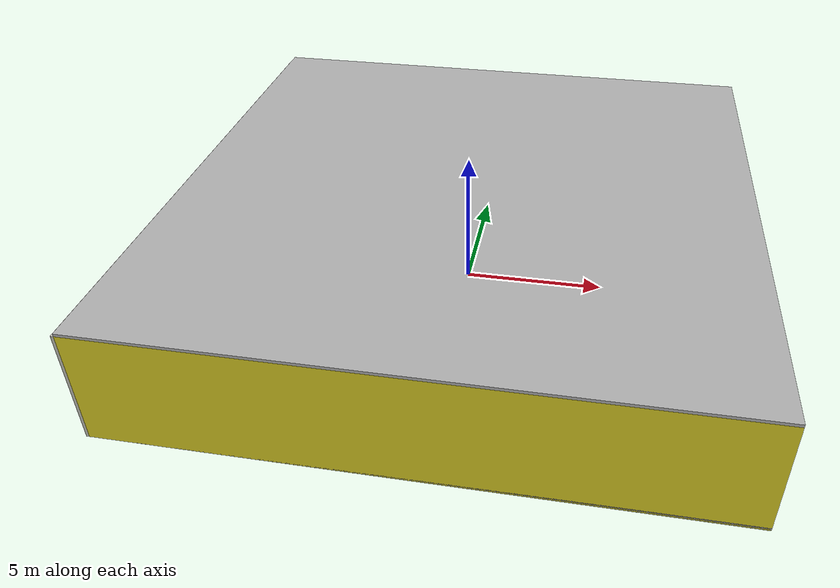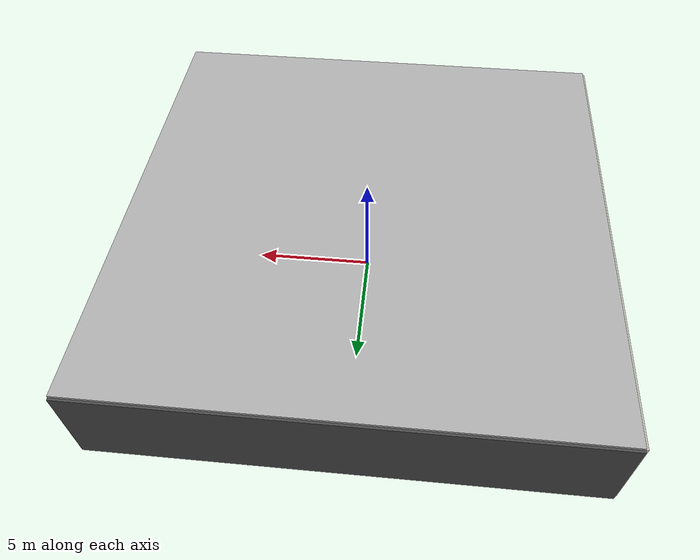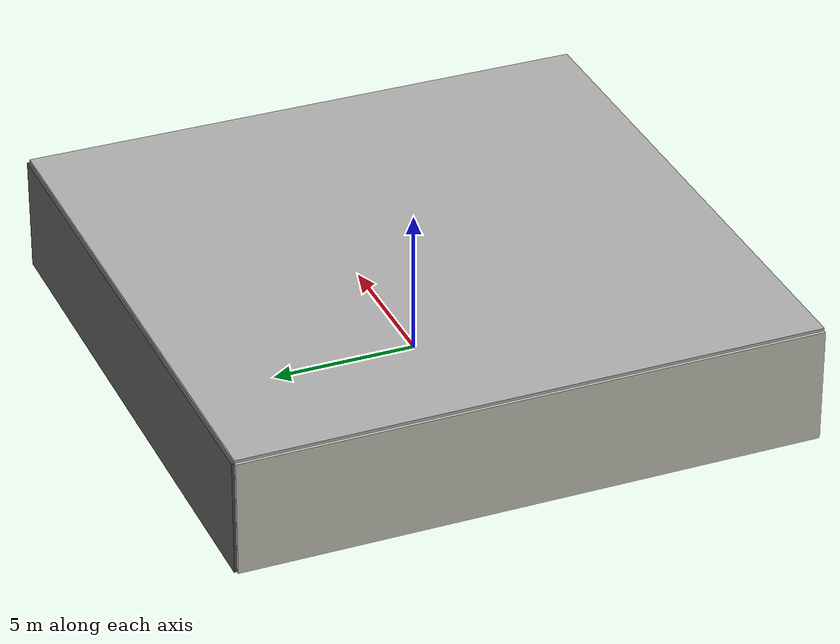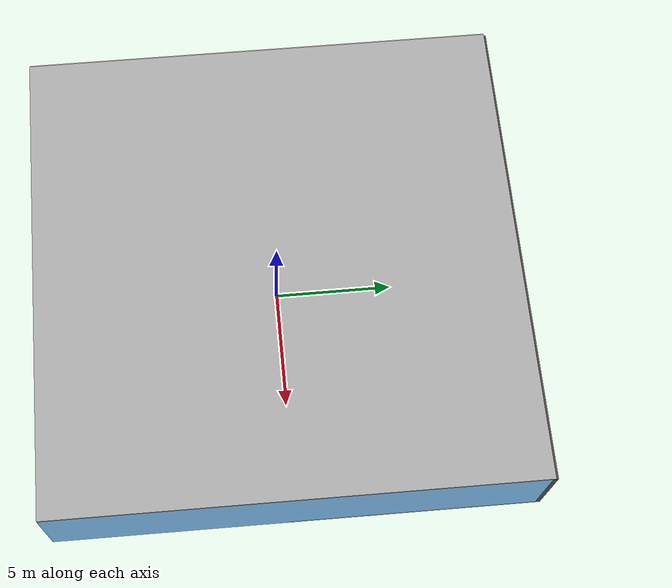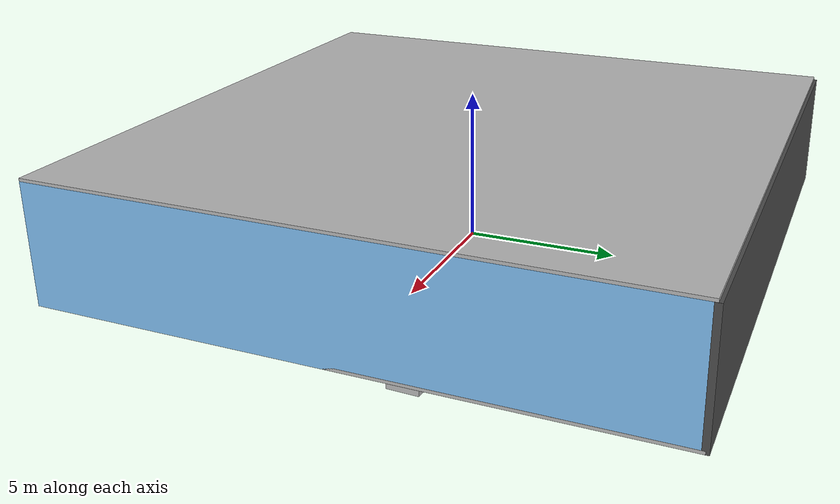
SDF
<sdf version="1.4">
 <world name="default">
  <physics type="ode">
   <max_step_size>0.001</max_step_size>
   <real_time_factor>1</real_time_factor>
   <real_time_update_rate>1000</real_time_update_rate>
   <gravity>0 0 -9.8</gravity>
  </physics>
  <scene><ambient>0.4 0.4 0.4 1</ambient><background>0.7 0.7 0.7 1</background><shadows>1</shadows></scene>
  <model name="Surrounding">
   <static>1</static>
   <link name="Ceiling">
    <collision name="Ceiling_Collision"><geometry><box><size>20 20 0.1</size></box></geometry></collision>
    <visual name="Ceiling_Visual">
     <geometry><box><size>20 20 0.1</size></box></geometry>
     <material>
      <script><uri>file://media/materials/scripts/gazebo.material</uri><name>Gazebo/Pioneer2Body</name></script>
     </material>
    </visual>
    <pose>0 0 4.05 0 0 0</pose>
   </link>
   <link name="Wall_South">
    <collision name="Wall_South_Collision">
     <geometry><box><size>20 0 4</size></box></geometry>
     <pose>0 0 2 0 -0 0</pose>
    </collision>
    <visual name="Wall_South_Visual">
     <pose>0 0 2 0 -0 0</pose>
     <geometry><box><size>20 0 4</size></box></geometry>
     <material>
      <script><uri>file://media/materials/scripts/gazebo.material</uri><name>Gazebo/YellowGlow</name></script>
     </material>
    </visual>
    <velocity_decay><linear>0</linear><angular>0</angular></velocity_decay>
    <pose>0 -10 0 0 -0 0</pose>
   </link>
   <link name="Wall_East">
    <collision name="Wall_21_Collision">
     <geometry><box><size>20 0 4</size></box></geometry>
     <pose>0 0 2 0 -0 0</pose>
    </collision>
    <visual name="Wall_21_Visual">
     <pose>0 0 2 0 -0 0</pose>
     <geometry><box><size>20 0 4</size></box></geometry>
     <material>
      <script><uri>file://media/materials/scripts/gazebo.material</uri><name>Gazebo/SkyBlue</name></script>
     </material>
    </visual>
    <velocity_decay><linear>0</linear><angular>0</angular></velocity_decay>
    <pose>10 0 0 0 -0 1.5708</pose>
   </link>
   <link name="Wall_North">
    <collision name="Wall_22_Collision">
     <geometry><box><size>20 0.2 4</size></box></geometry>
     <pose>0 0 2 0 -0 0</pose>
    </collision>
    <visual name="Wall_22_Visual">
     <pose>0 0 2 0 -0 0</pose>
     <geometry><box><size>20 0.2 4</size></box></geometry>
     <material>
      <script><uri>file://media/materials/scripts/gazebo.material</uri><name>Gazebo/DarkGrey</name></script>
     </material>
    </visual>
    <velocity_decay><linear>0</linear><angular>0</angular></velocity_decay>
    <pose>0 10 0 0 -0 0</pose>
   </link>
   <link name="Wall_West">
    <collision name="Wall_23_Collision">
     <geometry><box><size>20 0.2 4</size></box></geometry>
     <pose>0 0 2 0 -0 0</pose>
    </collision>
    <visual name="Wall_23_Visual">
     <pose>0 0 2 0 -0 0</pose>
     <geometry><box><size>20 0.2 4</size></box></geometry>
     <material>
      <script><uri>file://media/materials/scripts/gazebo.material</uri><name>Gazebo/PaintedWall</name></script>
     </material>
    </visual>
    <velocity_decay><linear>0</linear><angular>0</angular></velocity_decay>
    <pose>-10 0 0 0 0 -1.5708</pose>
   </link>
   <link name="Ground_link">
    <collision name="collision">
     <pose>0 0 .05 0 -0 0</pose>
     <geometry><box><size>20 20 0.1</size></box></geometry>
    </collision>
    <visual name="visual">
     <pose>0 0 .05 0 -0 0</pose>
     <geometry><box><size>20 20 0.1</size></box></geometry>
     <material>
      <script><uri>file://media/materials/scripts/gazebo.material</uri><name>Gazebo/JointAnchor</name></script>
     </material>
    </visual>
   </link>
   <static>1</static>
  </model>
  <spherical_coordinates>
   <surface_model>EARTH_WGS84</surface_model>
   <latitude_deg>0</latitude_deg>
   <longitude_deg>0</longitude_deg>
   <elevation>0</elevation>
   <heading_deg>0</heading_deg>
  </spherical_coordinates>
  <light name="lightball_0" type="diffuse">
   <diffuse>0.8 0.8 0.8 1</diffuse>
   <specular>0.2 0.2 0.2 1</specular>
   <attenuation>
    <range>100</range>
    <constant>0.7</constant>
    <linear>0.01</linear>
    <quadratic>0.001</quadratic>
   </attenuation>
   <direction>-0.5 0.1 -0.9</direction>
   <pose>-9.27996236369 8.98440845065 0.958283920018 0 0 0</pose>
  </light>
  <light name="lightball_1" type="diffuse">
   <diffuse>0.8 0.8 0.8 1</diffuse>
   <specular>0.2 0.2 0.2 1</specular>
   <attenuation>
    <range>100</range>
    <constant>0.7</constant>
    <linear>0.01</linear>
    <quadratic>0.001</quadratic>
   </attenuation>
   <direction>-0.5 0.1 -0.9</direction>
   <pose>-1.98472821358 6.70084306956 3.13054649911 0 0 0</pose>
  </light>
  <light name="lightball_2" type="diffuse">
   <diffuse>0.8 0.8 0.8 1</diffuse>
   <specular>0.2 0.2 0.2 1</specular>
   <attenuation>
    <range>100</range>
    <constant>0.7</constant>
    <linear>0.01</linear>
    <quadratic>0.001</quadratic>
   </attenuation>
   <direction>-0.5 0.1 -0.9</direction>
   <pose>-7.63768513947 -6.60048543363 3.18477352104 0 0 0</pose>
  </light>
  <light name="lightball_3" type="diffuse">
   <diffuse>0.8 0.8 0.8 1</diffuse>
   <specular>0.2 0.2 0.2 1</specular>
   <attenuation>
    <range>100</range>
    <constant>0.7</constant>
    <linear>0.01</linear>
    <quadratic>0.001</quadratic>
   </attenuation>
   <direction>-0.5 0.1 -0.9</direction>
   <pose>-8.47169962365 4.89795921211 1.90370890063 0 0 0</pose>
  </light>
  <light name="lightball_4" type="diffuse">
   <diffuse>0.8 0.8 0.8 1</diffuse>
   <specular>0.2 0.2 0.2 1</specular>
   <attenuation>
    <range>100</range>
    <constant>0.7</constant>
    <linear>0.01</linear>
    <quadratic>0.001</quadratic>
   </attenuation>
   <direction>-0.5 0.1 -0.9</direction>
   <pose>-1.4322400338 9.05599527339 2.52218229794 0 0 0</pose>
  </light>
  <light name="lightball_5" type="diffuse">
   <diffuse>0.8 0.8 0.8 1</diffuse>
   <specular>0.2 0.2 0.2 1</specular>
   <attenuation>
    <range>100</range>
    <constant>0.7</constant>
    <linear>0.01</linear>
    <quadratic>0.001</quadratic>
   </attenuation>
   <direction>-0.5 0.1 -0.9</direction>
   <pose>-8.54054334256 -5.64443583484 2.18927664427 0 0 0</pose>
  </light>
  <light name="lightball_6" type="diffuse">
   <diffuse>0.8 0.8 0.8 1</diffuse>
   <specular>0.2 0.2 0.2 1</specular>
   <attenuation>
    <range>100</range>
    <constant>0.7</constant>
    <linear>0.01</linear>
    <quadratic>0.001</quadratic>
   </attenuation>
   <direction>-0.5 0.1 -0.9</direction>
   <pose>-0.0999720140692 -6.62686021995 2.16994928104 0 0 0</pose>
  </light>
  <light name="lightball_7" type="diffuse">
   <diffuse>0.8 0.8 0.8 1</diffuse>
   <specular>0.2 0.2 0.2 1</specular>
   <attenuation>
    <range>100</range>
    <constant>0.7</constant>
    <linear>0.01</linear>
    <quadratic>0.001</quadratic>
   </attenuation>
   <direction>-0.5 0.1 -0.9</direction>
   <pose>2.85846020942 7.48684548811 2.20137010302 0 0 0</pose>
  </light>
  <light name="lightball_8" type="diffuse">
   <diffuse>0.8 0.8 0.8 1</diffuse>
   <specular>0.2 0.2 0.2 1</specular>
   <attenuation>
    <range>100</range>
    <constant>0.7</constant>
    <linear>0.01</linear>
    <quadratic>0.001</quadratic>
   </attenuation>
   <direction>-0.5 0.1 -0.9</direction>
   <pose>-8.72466380424 -7.54023747741 0.996428353684 0 0 0</pose>
  </light>
  <light name="lightball_9" type="diffuse">
   <diffuse>0.8 0.8 0.8 1</diffuse>
   <specular>0.2 0.2 0.2 1</specular>
   <attenuation>
    <range>100</range>
    <constant>0.7</constant>
    <linear>0.01</linear>
    <quadratic>0.001</quadratic>
   </attenuation>
   <direction>-0.5 0.1 -0.9</direction>
   <pose>1.59530033868 -4.90471668246 3.18038093622 0 0 0</pose>
  </light>
  <light name="lightball_10" type="diffuse">
   <diffuse>0.8 0.8 0.8 1</diffuse>
   <specular>0.2 0.2 0.2 1</specular>
   <attenuation>
    <range>100</range>
    <constant>0.7</constant>
    <linear>0.01</linear>
    <quadratic>0.001</quadratic>
   </attenuation>
   <direction>-0.5 0.1 -0.9</direction>
   <pose>-6.62898961193 4.07878666677 1.60787021825 0 0 0</pose>
  </light>
  <light name="lightball_11" type="diffuse">
   <diffuse>0.8 0.8 0.8 1</diffuse>
   <specular>0.2 0.2 0.2 1</specular>
   <attenuation>
    <range>100</range>
    <constant>0.7</constant>
    <linear>0.01</linear>
    <quadratic>0.001</quadratic>
   </attenuation>
   <direction>-0.5 0.1 -0.9</direction>
   <pose>5.03372465852 -9.85884392568 2.22469370688 0 0 0</pose>
  </light>
  <light name="lightball_12" type="diffuse">
   <diffuse>0.8 0.8 0.8 1</diffuse>
   <specular>0.2 0.2 0.2 1</specular>
   <attenuation>
    <range>100</range>
    <constant>0.7</constant>
    <linear>0.01</linear>
    <quadratic>0.001</quadratic>
   </attenuation>
   <direction>-0.5 0.1 -0.9</direction>
   <pose>-4.99209196434 -8.61823915847 1.7796602024 0 0 0</pose>
  </light>
  <include><uri>model://cabinet</uri><pose>-6.84104131804 2.28724862141 0 0 0 2.52380018716</pose></include>
  <include><uri>model://cabinet</uri><pose>-5.37391413902 0.892198758046 0 0 0 2.18689400115</pose></include>
  <include><uri>model://cabinet</uri><pose>-0.681750801335 1.40048577268 0 0 0 3.10208712956</pose></include>
  <include>
   <uri>model://robocup_3Dsim_goal</uri>
   <pose>3.81616264975 6.80558265147 0 0 0 0.262154329181</pose>
  </include>
  <include>
   <uri>model://construction_cone</uri>
   <pose>6.51725809352 -4.30672906765 0 0 0 0.426191456398</pose>
  </include>
  <include>
   <uri>model://textured_shapes</uri>
   <pose>7.51853535859 1.93639553049 0 0 0 1.53401027422</pose>
  </include>
 </world>
</sdf>

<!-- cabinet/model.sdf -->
<sdf version="1.5">
  <model name="cabinet">
    <static>true</static>
    <link name="cabinet_bottom_plate">
      <inertial>
        <pose>0 0 -1 0 0 0</pose>
        <inertia>
          <ixx>2.050000</ixx>
          <ixy>0</ixy>
          <ixz>0</ixz>
          <iyy>2.050000</iyy>
          <iyz>0</iyz>
          <izz>2.050000</izz>
        </inertia>
        <mass>25.000000</mass>
      </inertial>
      <collision name="cabinet_bottom_plate_geom">
        <pose>0 0 0.010000 0 0 0</pose>
        <geometry>
          <box>
            <size>0.450000 0.450000 0.020000</size>
          </box>
        </geometry>
      </collision>
      <visual name="cabinet_bottom_plate_geom_visual">
        <pose>0 0 0.010000 0 0 0</pose>
        <geometry>
          <box>
            <size>0.450000 0.450000 0.020000</size>
          </box>
        </geometry>
        <material>
          <script>
            <uri>model://media/materials/scripts/gazebo.material</uri>
            <name>Gazebo/Wood</name>
          </script>
        </material>
      </visual>
      <collision name="cabinet_bottom_plate_geom_cabinet_back_plate">
        <pose>0.235000 0 0.510000 0 0 0</pose>
        <geometry>
          <box>
            <size>0.020000 0.450000 1.020000</size>
          </box>
        </geometry>
      </collision>
      <visual name="cabinet_bottom_plate_geom_cabinet_back_plate_visual">
        <pose>0.235000 0 0.510000 0 0 0</pose>
        <geometry>
          <box>
            <size>0.020000 0.450000 1.020000</size>
          </box>
        </geometry>
        <material>
          <script>
            <uri>model://media/materials/scripts/gazebo.material</uri>
            <name>Gazebo/Wood</name>
          </script>
        </material>
      </visual>
      <collision name="cabinet_bottom_plate_geom_cabinet_left_plate">
        <pose>0 0.235000 0.510000 0 0 0</pose>
        <geometry>
          <box>
            <size>0.450000 0.020000 1.020000</size>
          </box>
        </geometry>
      </collision>
      <visual name="cabinet_bottom_plate_geom_cabinet_left_plate_visual">
        <pose>0 0.235000 0.510000 0 0 0</pose>
        <geometry>
          <box>
            <size>0.450000 0.020000 1.020000</size>
          </box>
        </geometry>
        <material>
          <script>
            <uri>model://media/materials/scripts/gazebo.material</uri>
            <name>Gazebo/Wood</name>
          </script>
        </material>
      </visual>
      <collision name="cabinet_bottom_plate_geom_cabinet_middle_plate">
        <pose>0 0 0.510000 0 0 0</pose>
        <geometry>
          <box>
            <size>0.450000 0.450000 0.020000</size>
          </box>
        </geometry>
      </collision>
      <visual name="cabinet_bottom_plate_geom_cabinet_middle_plate_visual">
        <pose>0 0 0.510000 0 0 0</pose>
        <geometry>
          <box>
            <size>0.450000 0.450000 0.020000</size>
          </box>
        </geometry>
        <material>
          <script>
            <uri>model://media/materials/scripts/gazebo.material</uri>
            <name>Gazebo/Wood</name>
          </script>
        </material>
      </visual>
      <collision name="cabinet_bottom_plate_geom_cabinet_right_plate">
        <pose>0 -0.235000 0.510000 0 0 0</pose>
        <geometry>
          <box>
            <size>0.450000 0.020000 1.020000</size>
          </box>
        </geometry>
      </collision>
      <visual name="cabinet_bottom_plate_geom_cabinet_right_plate_visual">
        <pose>0 -0.235000 0.510000 0 0 0</pose>
        <geometry>
          <box>
            <size>0.450000 0.020000 1.020000</size>
          </box>
        </geometry>
        <material>
          <script>
            <uri>model://media/materials/scripts/gazebo.material</uri>
            <name>Gazebo/Wood</name>
          </script>
        </material>
      </visual>
      <collision name="cabinet_bottom_plate_geom_cabinet_top_plate">
        <pose>0 0 1.010000 0 0 0</pose>
        <geometry>
          <box>
            <size>0.450000 0.450000 0.020000</size>
          </box>
        </geometry>
      </collision>
      <visual name="cabinet_bottom_plate_geom_cabinet_top_plate_visual">
        <pose>0 0 1.010000 0 0 0</pose>
        <geometry>
          <box>
            <size>0.450000 0.450000 0.020000</size>
          </box>
        </geometry>
        <material>
          <script>
            <uri>model://media/materials/scripts/gazebo.material</uri>
            <name>Gazebo/Wood</name>
          </script>
        </material>
      </visual>
    </link>
  </model>
</sdf>

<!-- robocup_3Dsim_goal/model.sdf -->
<sdf version="1.5">
  <model name="robocup_3d_goal">
    <static>true</static>
    <link name="left_post">
      <pose>0 1.05 0.45 0 0 0</pose>
      <collision name="collision">
        <geometry>
          <cylinder>
            <radius>0.05</radius>
            <length>0.9</length>
          </cylinder>
        </geometry>
      </collision>
      <visual name="visual">
        <geometry>
          <cylinder>
            <radius>0.05</radius>
            <length>0.9</length>
          </cylinder>
        </geometry>
        <material>
          <script>
            <uri>file://media/materials/scripts/gazebo.material</uri>
            <name>Gazebo/ZincYellow</name>
          </script>
        </material>
      </visual>
    </link>
    <link name="left_support_horiz_lower">
      <pose>0.30 1.05 0.01 0 0 0</pose>
      <collision name="collision">
        <geometry>
          <box>
            <size>0.50 0.02 0.02</size>
          </box>
        </geometry>
      </collision>
      <visual name="visual">
        <geometry>
          <box>
            <size>0.50 0.02 0.02</size>
          </box>
        </geometry>
        <material>
          <script>
            <uri>file://media/materials/scripts/gazebo.material</uri>
            <name>Gazebo/White</name>
          </script>
        </material>
      </visual>
    </link>
    <link name="left_support_horiz_upper">
      <pose>0.30 1.05 0.79 0 0 0</pose>
      <collision name="collision">
        <geometry>
          <box>
            <size>0.50 0.02 0.02</size>
          </box>
        </geometry>
      </collision>
      <visual name="visual">
        <geometry>
          <box>
            <size>0.50 0.02 0.02</size>
          </box>
        </geometry>
        <material>
          <script>
            <uri>file://media/materials/scripts/gazebo.material</uri>
            <name>Gazebo/White</name>
          </script>
        </material>
      </visual>
    </link>
    <link name="left_support_vertical">
      <pose>0.56 1.05 0.4 0 1.5708 0</pose>
      <collision name="collision">
        <geometry>
          <box>
            <size>0.80 0.02 0.02</size>
          </box>
        </geometry>
      </collision>
      <visual name="visual">
        <geometry>
          <box>
            <size>0.80 0.02 0.02</size>
          </box>
        </geometry>
        <material>
          <script>
            <uri>file://media/materials/scripts/gazebo.material</uri>
            <name>Gazebo/White</name>
          </script>
        </material>
      </visual>
    </link>
    <link name="right_support_horiz_lower">
      <pose>0.30 -1.05 0.01 0 0 0</pose>
      <collision name="collision">
        <geometry>
          <box>
            <size>0.50 0.02 0.02</size>
          </box>
        </geometry>
      </collision>
      <visual name="visual">
        <geometry>
          <box>
            <size>0.50 0.02 0.02</size>
          </box>
        </geometry>
        <material>
          <script>
            <uri>file://media/materials/scripts/gazebo.material</uri>
            <name>Gazebo/White</name>
          </script>
        </material>
      </visual>
    </link>
    <link name="right_support_horiz_upper">
      <pose>0.30 -1.05 0.79 0 0 0</pose>
      <collision name="collision">
        <geometry>
          <box>
            <size>0.50 0.02 0.02</size>
          </box>
        </geometry>
      </collision>
      <visual name="visual">
        <geometry>
          <box>
            <size>0.50 0.02 0.02</size>
          </box>
        </geometry>
        <material>
          <script>
            <uri>file://media/materials/scripts/gazebo.material</uri>
            <name>Gazebo/White</name>
          </script>
        </material>
      </visual>
    </link>
    <link name="right_support_vertical">
      <pose>0.56 -1.05 0.4 0 1.5708 0</pose>
      <collision name="collision">
        <geometry>
          <box>
            <size>0.80 0.02 0.02</size>
          </box>
        </geometry>
      </collision>
      <visual name="visual">
        <geometry>
          <box>
            <size>0.80 0.02 0.02</size>
          </box>
        </geometry>
        <material>
          <script>
            <uri>file://media/materials/scripts/gazebo.material</uri>
            <name>Gazebo/White</name>
          </script>
        </material>
      </visual>
    </link>
    <link name="center_support_horiz_lower">
      <pose>0.56 0 0.01 0 1.5708 0</pose>
      <collision name="collision">
        <geometry>
          <box>
            <size>0.02 2.08 0.02</size>
          </box>
        </geometry>
      </collision>
      <visual name="visual">
        <geometry>
          <box>
            <size>0.02 2.08 0.02</size>
          </box>
        </geometry>
        <material>
          <script>
            <uri>file://media/materials/scripts/gazebo.material</uri>
            <name>Gazebo/White</name>
          </script>
        </material>
      </visual>
    </link>
    <link name="center_support_horiz_upper">
      <pose>0.56 0 0.79 0 1.5708 0</pose>
      <collision name="collision">
        <geometry>
          <box>
            <size>0.02 2.08 0.02</size>
          </box>
        </geometry>
      </collision>
      <visual name="visual">
        <geometry>
          <box>
            <size>0.02 2.08 0.02</size>
          </box>
        </geometry>
        <material>
          <script>
            <uri>file://media/materials/scripts/gazebo.material</uri>
            <name>Gazebo/White</name>
          </script>
        </material>
      </visual>
    </link>
    <link name="right_post">
      <pose>0 -1.05 0.45 0 0 0</pose>
      <collision name="collision">
        <geometry>
          <cylinder>
            <radius>0.05</radius>
            <length>0.9</length>
          </cylinder>
        </geometry>
      </collision>
      <visual name="visual">
        <geometry>
          <cylinder>
            <radius>0.05</radius>
            <length>0.9</length>
          </cylinder>
        </geometry>
        <material>
          <script>
            <uri>file://media/materials/scripts/gazebo.material</uri>
            <name>Gazebo/ZincYellow</name>
          </script>
        </material>
      </visual>
    </link>
    <link name="crossbar">
      <pose>0 0 0.85 1.57 1.57 0</pose>
      <collision name="collision">
        <geometry>
          <cylinder>
            <radius>0.05</radius>
            <length>2.0</length>
          </cylinder>
        </geometry>
      </collision>
      <visual name="visual">
        <geometry>
          <cylinder>
            <radius>0.05</radius>
            <length>2.0</length>
          </cylinder>
        </geometry>
        <material>
          <script>
            <uri>file://media/materials/scripts/gazebo.material</uri>
            <name>Gazebo/ZincYellow</name>
          </script>
        </material>
      </visual>
    </link>
    <link name="center_net">
      <pose>0.56 0 0.40 0 0 0</pose>
      <collision name="collision">
        <geometry>
          <box>
            <size>0.01 2.1 0.80</size>
          </box>
        </geometry>
      </collision>
      <visual name="visual">
        <geometry>
          <box>
            <size>0.01 2.1 0.80</size>
          </box>
        </geometry>
        <material>
          <script>
            <uri>model://../model_source/models/robocup09_spl_field/materials/scripts/</uri>
            <uri>model://../model_source/models/robocup09_spl_field/materials/textures/</uri>
            <name>RoboCup/Net</name>
          </script>
        </material>
      </visual>
    </link>
    <link name="left_net">
      <pose>0.30 1.05 0.40 0 0 0</pose>
      <collision name="collision">
        <geometry>
          <box>
            <size>0.50 0.01 0.76</size>
          </box>
        </geometry>
      </collision>
      <visual name="visual">
        <geometry>
          <box>
            <size>0.50 0.01 0.76</size>
          </box>
        </geometry>
        <material>
          <script>
            <uri>model://../model_source/models/robocup09_spl_field/materials/scripts/</uri>
            <uri>model://../model_source/models/robocup09_spl_field/materials/textures/</uri>
            <name>RoboCup/Net</name>
          </script>
        </material>
      </visual>
    </link>
    <link name="right_net">
      <pose>0.30 -1.05 0.40 0 0 0</pose>
      <collision name="collision">
        <geometry>
          <box>
            <size>0.50 0.01 0.76</size>
          </box>
        </geometry>
      </collision>
      <visual name="visual">
        <geometry>
          <box>
            <size>0.50 0.01 0.76</size>
          </box>
        </geometry>
        <material>
          <script>
            <uri>model://../model_source/models/robocup09_spl_field/materials/scripts/</uri>
            <uri>model://../model_source/models/robocup09_spl_field/materials/textures/</uri>
            <name>RoboCup/Net</name>
          </script>
        </material>
      </visual>
    </link>
  </model>
</sdf>

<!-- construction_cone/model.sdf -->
<sdf version="1.5">
  <model name="Construction Cone">
    <link name="link">
      <collision name="collision">
        <geometry>
          <mesh>
            <scale>10 10 10</scale>
            <uri>file://isr-testbed/construction_cone/meshes/construction_cone.dae</uri>
          </mesh>
        </geometry>
      </collision>
      <visual name="visual">
        <geometry>
          <mesh>
            <scale>10 10 10</scale>
            <uri>file://isr-testbed/construction_cone/meshes/construction_cone.dae</uri>
          </mesh>
        </geometry>
      </visual>
    </link>
  </model>
</sdf>

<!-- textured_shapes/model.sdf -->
<sdf version="1.6">
  <model name="textured_shapes">
    <pose>0 0 0.5 0 0 0</pose>
    <link name="box">
      <pose>0 -1.5 0 0 0 0</pose>
      <collision name="collision">
        <geometry>
          <box>
            <size>1 1 1</size>
          </box>
        </geometry>
      </collision>
      <visual name="visual">
        <geometry>
          <box>
            <size>1 1 1</size>
          </box>
        </geometry>
        <material>
          <script>
            <uri>model://../model_source/models/textured_shapes/materials/scripts</uri>
            <uri>model://../model_source/models/textured_shapes/materials/textures</uri>
            <name>TexturedShape/Squares</name>
          </script>
        </material>
      </visual>
    </link>
    <link name="sphere">
      <collision name="collision">
        <geometry>
          <sphere>
            <radius>0.5</radius>
          </sphere>
        </geometry>
      </collision>
      <visual name="visual">
        <geometry>
          <sphere>
            <radius>0.5</radius>
          </sphere>
        </geometry>
        <material>
          <script>
            <uri>model://../model_source/models/textured_shapes/materials/scripts</uri>
            <uri>model://../model_source/models/textured_shapes/materials/textures</uri>
            <name>TexturedShape/Squares</name>
          </script>
        </material>
      </visual>
    </link>
    <link name="cylinder">
      <pose>0 1.5 0 0 0 0</pose>
      <collision name="collision">
        <geometry>
          <cylinder>
            <radius>0.5</radius>
            <length>1</length>
          </cylinder>
        </geometry>
      </collision>
      <visual name="visual">
        <geometry>
          <cylinder>
            <radius>0.5</radius>
            <length>1</length>
          </cylinder>
        </geometry>
        <material>
          <script>
            <uri>model://../model_source/models/textured_shapes/materials/scripts</uri>
            <uri>model://../model_source/models/textured_shapes/materials/textures</uri>
            <name>TexturedShape/Squares</name>
          </script>
        </material>
      </visual>
    </link>
  </model>
</sdf>
